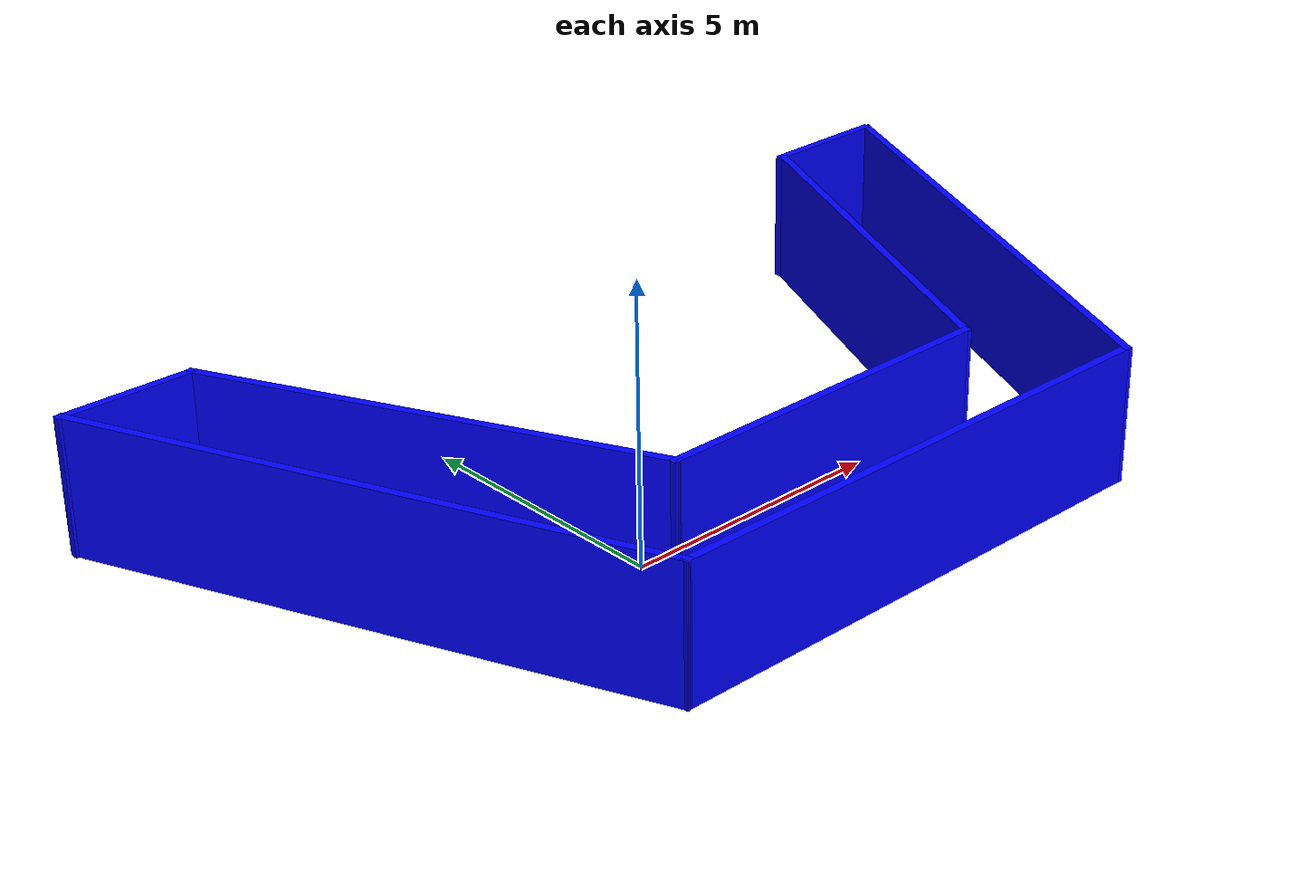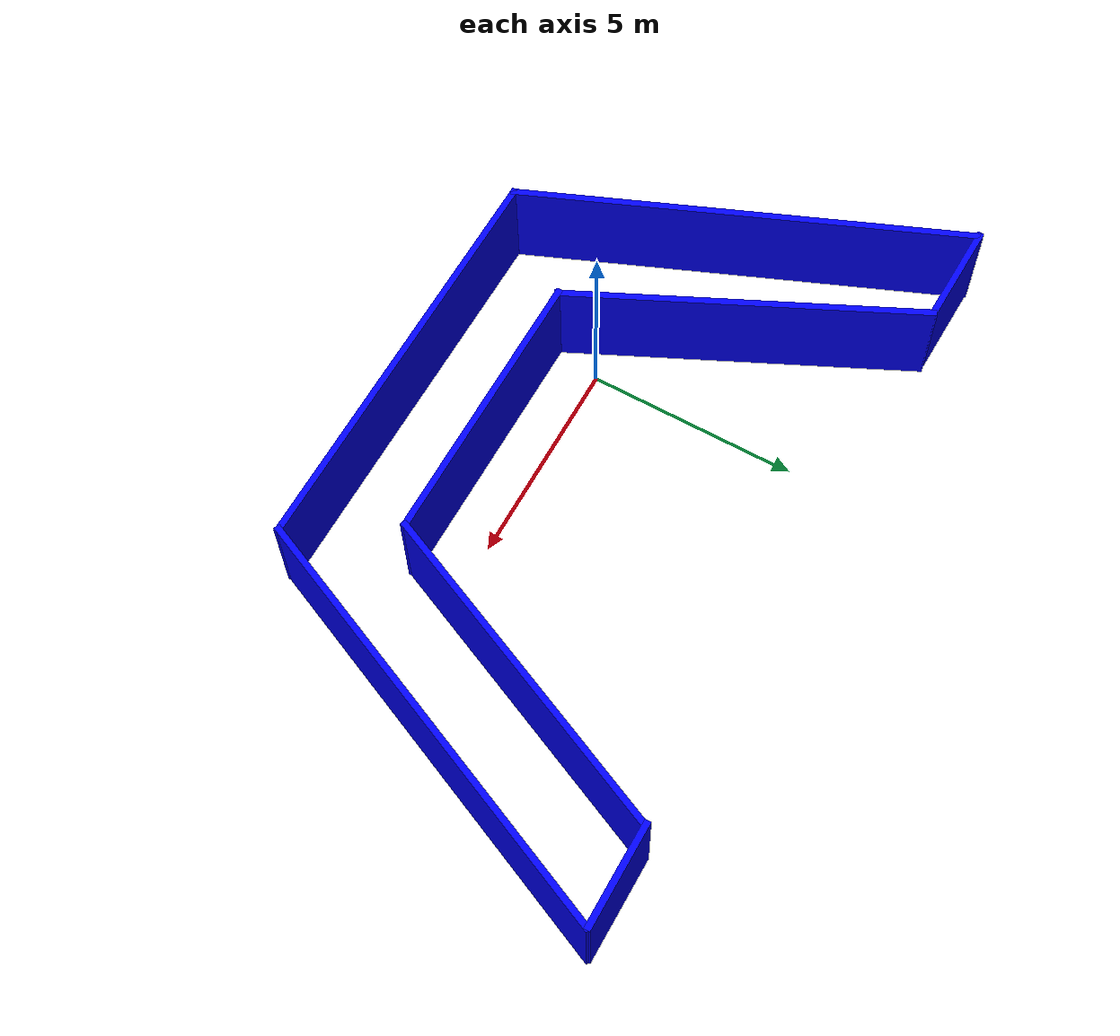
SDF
<?xml version='1.0'?>
<sdf version='1.6'>
  <model name='U_model'>
    <pose frame=''>2.87019 1.53031 0 0 -0 0</pose>
    <link name='Wall_0'>
      <collision name='Wall_0_Collision'>
        <geometry>
          <box>
            <size>10.8038 0.15 2.5</size>
          </box>
        </geometry>
        <pose frame=''>0 0 1.25 0 -0 0</pose>
      </collision>
      <visual name='Wall_0_Visual'>
        <pose frame=''>0 0 1.25 0 -0 0</pose>
        <geometry>
          <box>
            <size>10.8038 0.15 2.5</size>
          </box>
        </geometry>
        <material>
          <script>
            <uri>file://media/materials/scripts/gazebo.material</uri>
            <name>Gazebo/Grey</name>
          </script>
          <ambient>0 0 1 1</ambient>
        </material>
        <meta>
          <layer>0</layer>
        </meta>
      </visual>
      <pose frame=''>-7.06716 0.026129 0 0 -0 1.96173</pose>
    </link>
    <link name='Wall_1'>
      <collision name='Wall_1_Collision'>
        <geometry>
          <box>
            <size>2.50051 0.15 2.5</size>
          </box>
        </geometry>
        <pose frame=''>0 0 1.25 0 -0 0</pose>
      </collision>
      <visual name='Wall_1_Visual'>
        <pose frame=''>0 0 1.25 0 -0 0</pose>
        <geometry>
          <box>
            <size>2.50051 0.15 2.5</size>
          </box>
        </geometry>
        <material>
          <script>
            <uri>file://media/materials/scripts/gazebo.material</uri>
            <name>Gazebo/Grey</name>
          </script>
          <ambient>0 0 1 1</ambient>
        </material>
        <meta>
          <layer>0</layer>
        </meta>
      </visual>
      <pose frame=''>-7.94859 4.92541 0 0 0 -0.021883</pose>
    </link>
    <link name='Wall_2'>
      <collision name='Wall_2_Collision'>
        <geometry>
          <box>
            <size>8.53515 0.15 2.5</size>
          </box>
        </geometry>
        <pose frame=''>0 0 1.25 0 -0 0</pose>
      </collision>
      <visual name='Wall_2_Visual'>
        <pose frame=''>0 0 1.25 0 -0 0</pose>
        <geometry>
          <box>
            <size>8.53515 0.15 2.5</size>
          </box>
        </geometry>
        <material>
          <script>
            <uri>file://media/materials/scripts/gazebo.material</uri>
            <name>Gazebo/Grey</name>
          </script>
          <ambient>0 0 1 1</ambient>
        </material>
        <meta>
          <layer>0</layer>
        </meta>
      </visual>
      <pose frame=''>-4.94741 1.11299 0 0 0 -1.12715</pose>
    </link>
    <link name='Wall_3'>
      <collision name='Wall_3_Collision'>
        <geometry>
          <box>
            <size>6.75 0.15 2.5</size>
          </box>
        </geometry>
        <pose frame=''>0 0 1.25 0 -0 0</pose>
      </collision>
      <visual name='Wall_3_Visual'>
        <pose frame=''>0 0 1.25 0 -0 0</pose>
        <geometry>
          <box>
            <size>6.75 0.15 2.5</size>
          </box>
        </geometry>
        <material>
          <script>
            <uri>file://media/materials/scripts/gazebo.material</uri>
            <name>Gazebo/Grey</name>
          </script>
          <ambient>0 0 1 1</ambient>
        </material>
        <meta>
          <layer>0</layer>
        </meta>
      </visual>
      <pose frame=''>0.125605 -2.6737 0 0 -0 0</pose>
    </link>
    <link name='Wall_4'>
      <collision name='Wall_4_Collision'>
        <geometry>
          <box>
            <size>8.39714 0.15 2.5</size>
          </box>
        </geometry>
        <pose frame=''>0 0 1.25 0 -0 0</pose>
      </collision>
      <visual name='Wall_4_Visual'>
        <pose frame=''>0 0 1.25 0 -0 0</pose>
        <geometry>
          <box>
            <size>8.39714 0.15 2.5</size>
          </box>
        </geometry>
        <material>
          <script>
            <uri>file://media/materials/scripts/gazebo.material</uri>
            <name>Gazebo/Grey</name>
          </script>
          <ambient>0 0 1 1</ambient>
        </material>
        <meta>
          <layer>0</layer>
        </meta>
      </visual>
      <pose frame=''>5.08852 1.0997 0 0 -0 1.15571</pose>
    </link>
    <link name='Wall_5'>
      <collision name='Wall_5_Collision'>
        <geometry>
          <box>
            <size>2.5 0.15 2.5</size>
          </box>
        </geometry>
        <pose frame=''>0 0 1.25 0 -0 0</pose>
      </collision>
      <visual name='Wall_5_Visual'>
        <pose frame=''>0 0 1.25 0 -0 0</pose>
        <geometry>
          <box>
            <size>2.5 0.15 2.5</size>
          </box>
        </geometry>
        <material>
          <script>
            <uri>file://media/materials/scripts/gazebo.material</uri>
            <name>Gazebo/Grey</name>
          </script>
          <ambient>0 0 1 1</ambient>
        </material>
        <meta>
          <layer>0</layer>
        </meta>
      </visual>
      <pose frame=''>7.89984 4.89969 0 0 -0 0</pose>
    </link>
    <link name='Wall_6'>
      <collision name='Wall_6_Collision'>
        <geometry>
          <box>
            <size>10.8688 0.15 2.5</size>
          </box>
        </geometry>
        <pose frame=''>0 0 1.25 0 -0 0</pose>
      </collision>
      <visual name='Wall_6_Visual'>
        <pose frame=''>0 0 1.25 0 -0 0</pose>
        <geometry>
          <box>
            <size>10.8688 0.15 2.5</size>
          </box>
        </geometry>
        <material>
          <script>
            <uri>file://media/materials/scripts/gazebo.material</uri>
            <name>Gazebo/Grey</name>
          </script>
          <ambient>0 0 1 1</ambient>
        </material>
        <meta>
          <layer>0</layer>
        </meta>
      </visual>
      <pose frame=''>6.95703 -0.038605 0 0 0 -1.98245</pose>
    </link>
    <link name='Wall_7'>
      <collision name='Wall_7_Collision'>
        <geometry>
          <box>
            <size>10.0001 0.15 2.5</size>
          </box>
        </geometry>
        <pose frame=''>0 0 1.25 0 -0 0</pose>
      </collision>
      <visual name='Wall_7_Visual'>
        <pose frame=''>0 0 1.25 0 -0 0</pose>
        <geometry>
          <box>
            <size>10.0001 0.15 2.5</size>
          </box>
        </geometry>
        <material>
          <script>
            <uri>file://media/materials/scripts/gazebo.material</uri>
            <name>Gazebo/Grey</name>
          </script>
          <ambient>0 0 1 1</ambient>
        </material>
        <meta>
          <layer>0</layer>
        </meta>
      </visual>
      <pose frame=''>-0.112371 -4.92459 0 0 -0 3.13637</pose>
    </link>
    <static>1</static>
  </model>
</sdf>
